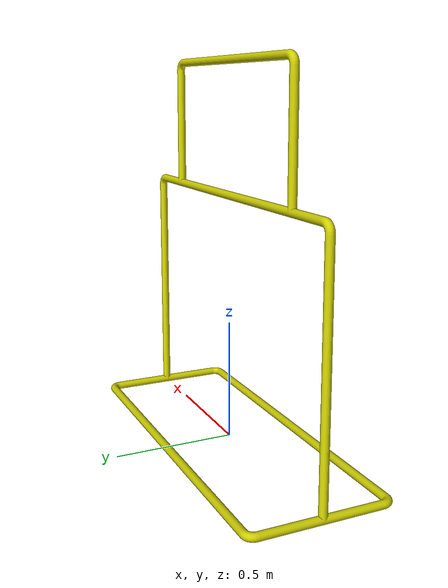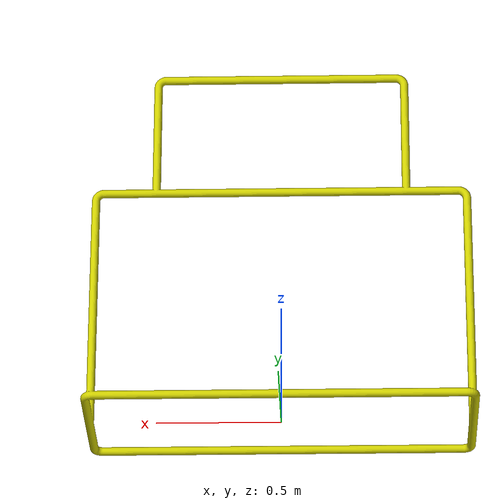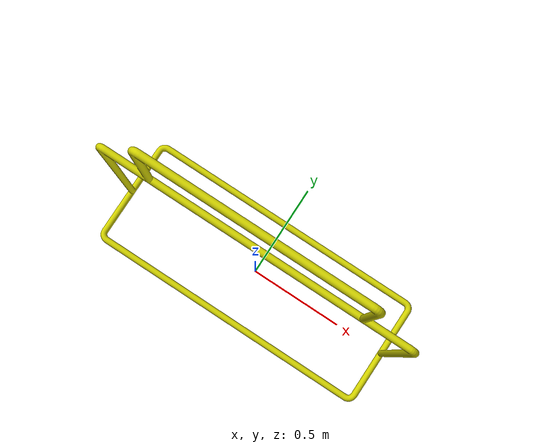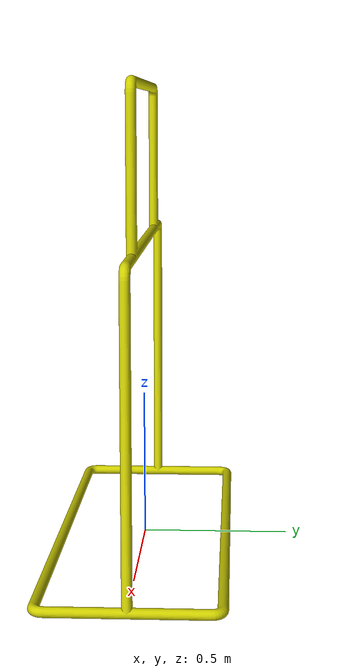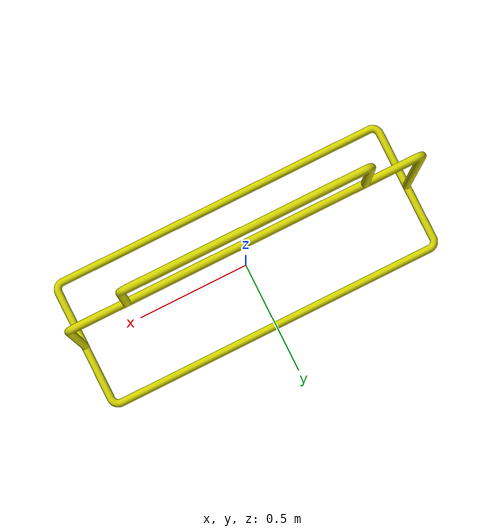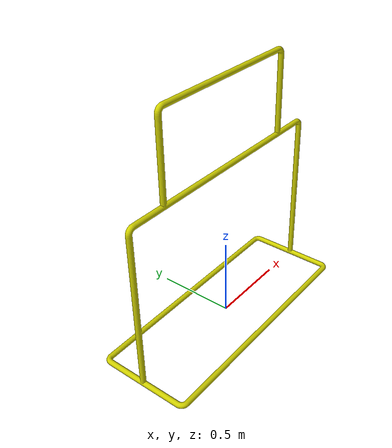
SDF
<?xml version="1.0"?>
<sdf version="1.5">
	<model name="a_mission">
		<static>false</static>

		<inertial>
      <mass>0.1</mass>
      <inertia>
        <ixx>0</ixx>
        <ixy>0</ixy>
        <ixz>0</ixz>
        <iyy>0</iyy>
        <iyz>0</iyz>
        <izz>0</izz>
      </inertia>
    </inertial>

    <velocity_decay>
      <linear>0.00001</linear>
      <angular>0.00001</angular>
    </velocity_decay>
		<link name="a_mission">
			<collision name="a_missioncol">
				<pose>
					0 0 0 0 0 0
				</pose>
				<geometry>
					<mesh>
						<uri>
							model://a_mission/a_mission.dae
						</uri>
					</mesh>
				</geometry>
			</collision>
			<visual name="a_missionvis">
				<pose>
					0 0 0 0 0 0
				</pose>
				<geometry>
					<mesh>
						<uri>
							model://a_mission/a_mission.dae
						</uri>
					</mesh>
				</geometry>
			</visual>
		</link>
	</model>
</sdf>
